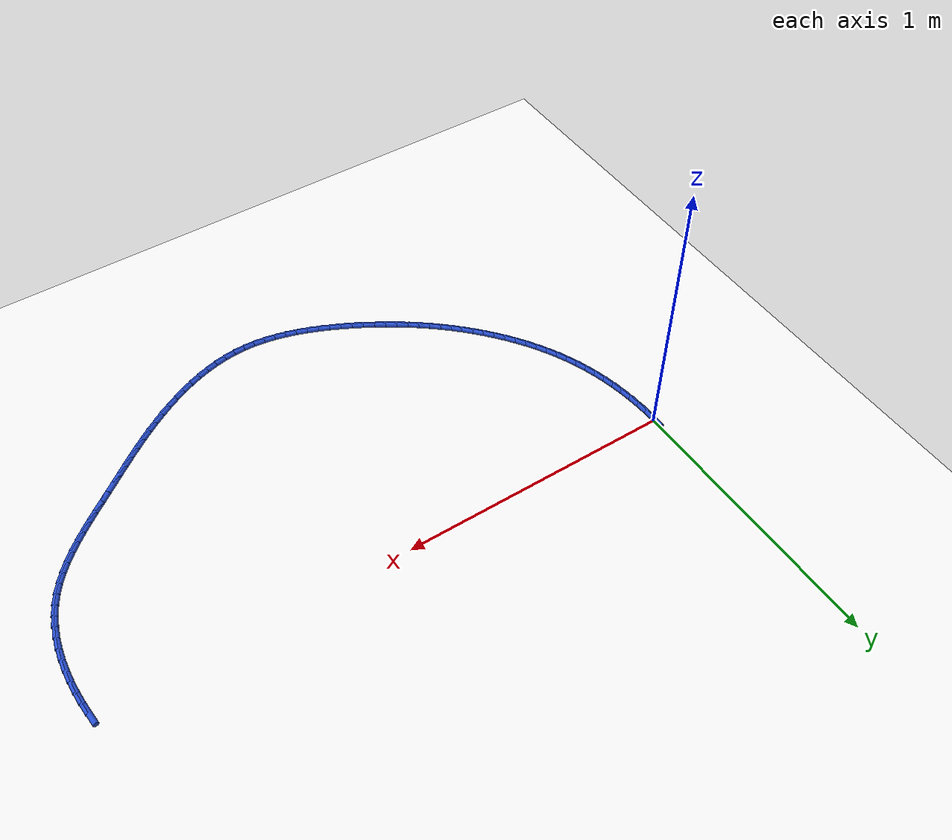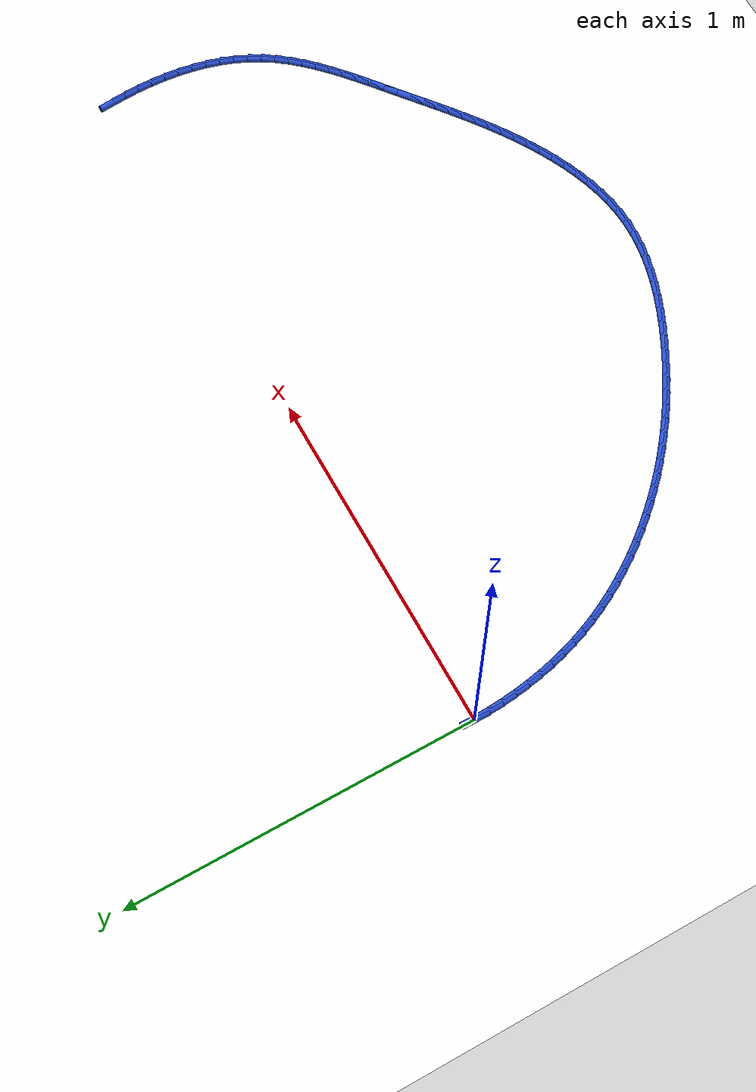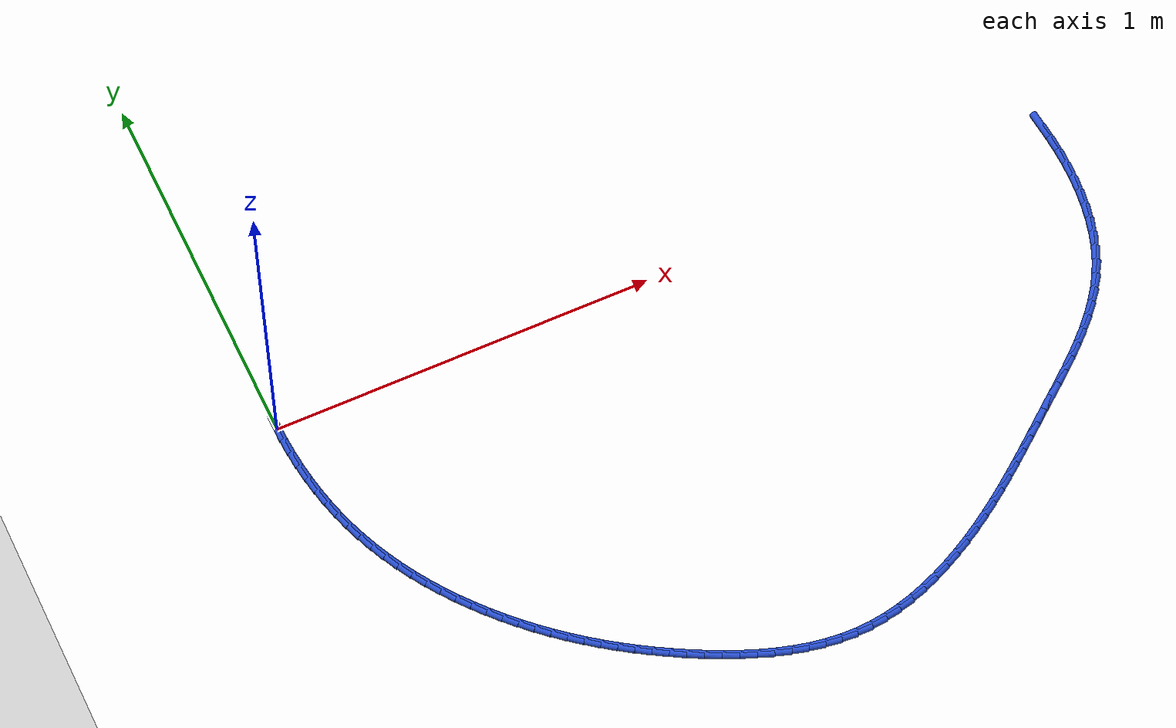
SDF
<sdf version="1.6">
 <world name="default">
  <model name="ground_plane">
   <static>1</static>
   <link name="link">
    <collision name="collision">
     <geometry><plane><normal>0 0 1</normal><size>100 100</size></plane></geometry>
     <surface><friction><ode><mu>100</mu><mu2>50</mu2></ode></friction></surface>
    </collision>
    <visual name="visual">
     <cast_shadows>0</cast_shadows>
     <geometry><plane><normal>0 0 1</normal><size>100 100</size></plane></geometry>
     <material>
      <script><uri>file://media/materials/scripts/gazebo.material</uri><name>Gazebo/WhiteGlow</name></script>
     </material>
    </visual>
   </link>
  </model>
  <model name="line">
   <link name="link_0">
    <pose>5.204170427930421e-18 1.3877787807814457e-17 0.01 0 1.57 1.5624504358657028</pose>
    <collision name="collision">
     <geometry><cylinder><radius>0.01</radius><length>0.08</length></cylinder></geometry>
    </collision>
    <visual name="visual">
     <material>
      <script><name>Gazebo/Blue</name><uri>file://media/materials/scripts/gazebo.material</uri></script>
     </material>
     <geometry><cylinder><radius>0.01</radius><length>0.08</length></cylinder></geometry>
    </visual>
   </link>
   <link name="link_80">
    <pose>2.093784218397002 -0.013308781651336853 0.01 0 1.57 -1.4902204336934235</pose>
    <collision name="collision">
     <geometry><cylinder><radius>0.01</radius><length>0.08</length></cylinder></geometry>
    </collision>
    <visual name="visual">
     <material>
      <script><name>Gazebo/Blue</name><uri>file://media/materials/scripts/gazebo.material</uri></script>
     </material>
     <geometry><cylinder><radius>0.01</radius><length>0.08</length></cylinder></geometry>
    </visual>
   </link>
   <link name="link_81">
    <pose>2.0971899885968877 -0.055485123127867124 0.01 0 1.57 -1.5299615712983357</pose>
    <collision name="collision">
     <geometry><cylinder><radius>0.01</radius><length>0.08</length></cylinder></geometry>
    </collision>
    <visual name="visual">
     <material>
      <script><name>Gazebo/Blue</name><uri>file://media/materials/scripts/gazebo.material</uri></script>
     </material>
     <geometry><cylinder><radius>0.01</radius><length>0.08</length></cylinder></geometry>
    </visual>
   </link>
   <link name="link_82">
    <pose>2.0989229456311054 -0.09789981825498363 0.01 0 1.57 1.569244556326786</pose>
    <collision name="collision">
     <geometry><cylinder><radius>0.01</radius><length>0.08</length></cylinder></geometry>
    </collision>
    <visual name="visual">
     <material>
      <script><name>Gazebo/Blue</name><uri>file://media/materials/scripts/gazebo.material</uri></script>
     </material>
     <geometry><cylinder><radius>0.01</radius><length>0.08</length></cylinder></geometry>
    </visual>
   </link>
   <link name="link_83">
    <pose>2.098857074156613 -0.14034902254991538 0.01 0 1.57 1.5237468387316762</pose>
    <collision name="collision">
     <geometry><cylinder><radius>0.01</radius><length>0.08</length></cylinder></geometry>
    </collision>
    <visual name="visual">
     <material>
      <script><name>Gazebo/Blue</name><uri>file://media/materials/scripts/gazebo.material</uri></script>
     </material>
     <geometry><cylinder><radius>0.01</radius><length>0.08</length></cylinder></geometry>
    </visual>
   </link>
   <link name="link_84">
    <pose>2.096866358830369 -0.1826288915298936 0.01 0 1.57 1.4746514463845992</pose>
    <collision name="collision">
     <geometry><cylinder><radius>0.01</radius><length>0.08</length></cylinder></geometry>
    </collision>
    <visual name="visual">
     <material>
      <script><name>Gazebo/Blue</name><uri>file://media/materials/scripts/gazebo.material</uri></script>
     </material>
     <geometry><cylinder><radius>0.01</radius><length>0.08</length></cylinder></geometry>
    </visual>
   </link>
   <link name="link_85">
    <pose>2.092824784309332 -0.22453558071214902 0.01 0 1.57 1.4214568233668377</pose>
    <collision name="collision">
     <geometry><cylinder><radius>0.01</radius><length>0.08</length></cylinder></geometry>
    </collision>
    <visual name="visual">
     <material>
      <script><name>Gazebo/Blue</name><uri>file://media/materials/scripts/gazebo.material</uri></script>
     </material>
     <geometry><cylinder><radius>0.01</radius><length>0.08</length></cylinder></geometry>
    </visual>
   </link>
   <link name="link_86">
    <pose>2.0866063352504582 -0.26586524561391206 0.01 0 1.57 1.3636602497576782</pose>
    <collision name="collision">
     <geometry><cylinder><radius>0.01</radius><length>0.08</length></cylinder></geometry>
    </collision>
    <visual name="visual">
     <material>
      <script><name>Gazebo/Blue</name><uri>file://media/materials/scripts/gazebo.material</uri></script>
     </material>
     <geometry><cylinder><radius>0.01</radius><length>0.08</length></cylinder></geometry>
    </visual>
   </link>
   <link name="link_87">
    <pose>2.078084996310707 -0.3064140417524139 0.01 0 1.57 1.3007831247913817</pose>
    <collision name="collision">
     <geometry><cylinder><radius>0.01</radius><length>0.08</length></cylinder></geometry>
    </collision>
    <visual name="visual">
     <material>
      <script><name>Gazebo/Blue</name><uri>file://media/materials/scripts/gazebo.material</uri></script>
     </material>
     <geometry><cylinder><radius>0.01</radius><length>0.08</length></cylinder></geometry>
    </visual>
   </link>
   <link name="link_88">
    <pose>2.0671347521470356 -0.34597812464488364 0.01 0 1.57 1.2324109073869995</pose>
    <collision name="collision">
     <geometry><cylinder><radius>0.01</radius><length>0.08</length></cylinder></geometry>
    </collision>
    <visual name="visual">
     <material>
      <script><name>Gazebo/Blue</name><uri>file://media/materials/scripts/gazebo.material</uri></script>
     </material>
     <geometry><cylinder><radius>0.01</radius><length>0.08</length></cylinder></geometry>
    </visual>
   </link>
   <link name="link_89">
    <pose>2.053629587416402 -0.38435364980855263 0.01 0 1.57 1.1582500764771952</pose>
    <collision name="collision">
     <geometry><cylinder><radius>0.01</radius><length>0.08</length></cylinder></geometry>
    </collision>
    <visual name="visual">
     <material>
      <script><name>Gazebo/Blue</name><uri>file://media/materials/scripts/gazebo.material</uri></script>
     </material>
     <geometry><cylinder><radius>0.01</radius><length>0.08</length></cylinder></geometry>
    </visual>
   </link>
   <link name="link_90">
    <pose>2.0374434867757643 -0.4213367727606514 0.01 0 1.57 1.0782090351144642</pose>
    <collision name="collision">
     <geometry><cylinder><radius>0.01</radius><length>0.08</length></cylinder></geometry>
    </collision>
    <visual name="visual">
     <material>
      <script><name>Gazebo/Blue</name><uri>file://media/materials/scripts/gazebo.material</uri></script>
     </material>
     <geometry><cylinder><radius>0.01</radius><length>0.08</length></cylinder></geometry>
    </visual>
   </link>
   <link name="link_91">
    <pose>2.0184506739896557 -0.4567238455673195 0.01 0 1.57 0.9961169589376873</pose>
    <collision name="collision">
     <geometry><cylinder><radius>0.01</radius><length>0.08</length></cylinder></geometry>
    </collision>
    <visual name="visual">
     <material>
      <script><name>Gazebo/Blue</name><uri>file://media/materials/scripts/gazebo.material</uri></script>
     </material>
     <geometry><cylinder><radius>0.01</radius><length>0.08</length></cylinder></geometry>
    </visual>
   </link>
   <link name="link_92">
    <pose>1.99663921477434 -0.4904047995608812 0.01 0 1.57 0.9220245588589051</pose>
    <collision name="collision">
     <geometry><cylinder><radius>0.01</radius><length>0.08</length></cylinder></geometry>
    </collision>
    <visual name="visual">
     <material>
      <script><name>Gazebo/Blue</name><uri>file://media/materials/scripts/gazebo.material</uri></script>
     </material>
     <geometry><cylinder><radius>0.01</radius><length>0.08</length></cylinder></geometry>
    </visual>
   </link>
   <link name="link_93">
    <pose>1.9722928691775803 -0.5225126298839304 0.01 0 1.57 0.8578663828963204</pose>
    <collision name="collision">
     <geometry><cylinder><radius>0.01</radius><length>0.08</length></cylinder></geometry>
    </collision>
    <visual name="visual">
     <material>
      <script><name>Gazebo/Blue</name><uri>file://media/materials/scripts/gazebo.material</uri></script>
     </material>
     <geometry><cylinder><radius>0.01</radius><length>0.08</length></cylinder></geometry>
    </visual>
   </link>
   <link name="link_94">
    <pose>1.9457427860512124 -0.5532192857679811 0.01 0 1.57 0.8036130226976927</pose>
    <collision name="collision">
     <geometry><cylinder><radius>0.01</radius><length>0.08</length></cylinder></geometry>
    </collision>
    <visual name="visual">
     <material>
      <script><name>Gazebo/Blue</name><uri>file://media/materials/scripts/gazebo.material</uri></script>
     </material>
     <geometry><cylinder><radius>0.01</radius><length>0.08</length></cylinder></geometry>
    </visual>
   </link>
   <link name="link_95">
    <pose>1.9173201142470697 -0.5826967164445459 0.01 0 1.57 0.7589595821065728</pose>
    <collision name="collision">
     <geometry><cylinder><radius>0.01</radius><length>0.08</length></cylinder></geometry>
    </collision>
    <visual name="visual">
     <material>
      <script><name>Gazebo/Blue</name><uri>file://media/materials/scripts/gazebo.material</uri></script>
     </material>
     <geometry><cylinder><radius>0.01</radius><length>0.08</length></cylinder></geometry>
    </visual>
   </link>
   <link name="link_96">
    <pose>1.8873560026169864 -0.6111168711451384 0.01 0 1.57 0.7234841705600613</pose>
    <collision name="collision">
     <geometry><cylinder><radius>0.01</radius><length>0.08</length></cylinder></geometry>
    </collision>
    <visual name="visual">
     <material>
      <script><name>Gazebo/Blue</name><uri>file://media/materials/scripts/gazebo.material</uri></script>
     </material>
     <geometry><cylinder><radius>0.01</radius><length>0.08</length></cylinder></geometry>
    </visual>
   </link>
   <link name="link_97">
    <pose>1.8561816000127982 -0.6386516991012705 0.01 0 1.57 0.6967631547896549</pose>
    <collision name="collision">
     <geometry><cylinder><radius>0.01</radius><length>0.08</length></cylinder></geometry>
    </collision>
    <visual name="visual">
     <material>
      <script><name>Gazebo/Blue</name><uri>file://media/materials/scripts/gazebo.material</uri></script>
     </material>
     <geometry><cylinder><radius>0.01</radius><length>0.08</length></cylinder></geometry>
    </visual>
   </link>
   <link name="link_98">
    <pose>1.8241280552863381 -0.6654731495444552 0.01 0 1.57 0.6784479593526502</pose>
    <collision name="collision">
     <geometry><cylinder><radius>0.01</radius><length>0.08</length></cylinder></geometry>
    </collision>
    <visual name="visual">
     <material>
      <script><name>Gazebo/Blue</name><uri>file://media/materials/scripts/gazebo.material</uri></script>
     </material>
     <geometry><cylinder><radius>0.01</radius><length>0.08</length></cylinder></geometry>
    </visual>
   </link>
   <link name="link_99">
    <pose>1.791526517289441 -0.6917531717062058 0.01 0 1.57 0.6683137052485225</pose>
    <collision name="collision">
     <geometry><cylinder><radius>0.01</radius><length>0.08</length></cylinder></geometry>
    </collision>
    <visual name="visual">
     <material>
      <script><name>Gazebo/Blue</name><uri>file://media/materials/scripts/gazebo.material</uri></script>
     </material>
     <geometry><cylinder><radius>0.01</radius><length>0.08</length></cylinder></geometry>
    </visual>
   </link>
   <link name="link_100">
    <pose>1.7587081348739417 -0.717663714818035 0.01 0 1.57 0.666287559756566</pose>
    <collision name="collision">
     <geometry><cylinder><radius>0.01</radius><length>0.08</length></cylinder></geometry>
    </collision>
    <visual name="visual">
     <material>
      <script><name>Gazebo/Blue</name><uri>file://media/materials/scripts/gazebo.material</uri></script>
     </material>
     <geometry><cylinder><radius>0.01</radius><length>0.08</length></cylinder></geometry>
    </visual>
   </link>
   <link name="link_101">
    <pose>1.726003972228084 -0.7433766841606453 0.01 0 1.57 0.6697487113102368</pose>
    <collision name="collision">
     <geometry><cylinder><radius>0.01</radius><length>0.08</length></cylinder></geometry>
    </collision>
    <visual name="visual">
     <material>
      <script><name>Gazebo/Blue</name><uri>file://media/materials/scripts/gazebo.material</uri></script>
     </material>
     <geometry><cylinder><radius>0.01</radius><length>0.08</length></cylinder></geometry>
    </visual>
   </link>
   <link name="link_102">
    <pose>1.693635814567277 -0.7690072557935899 0.01 0 1.57 0.6707052212868624</pose>
    <collision name="collision">
     <geometry><cylinder><radius>0.01</radius><length>0.08</length></cylinder></geometry>
    </collision>
    <visual name="visual">
     <material>
      <script><name>Gazebo/Blue</name><uri>file://media/materials/scripts/gazebo.material</uri></script>
     </material>
     <geometry><cylinder><radius>0.01</radius><length>0.08</length></cylinder></geometry>
    </visual>
   </link>
   <link name="link_103">
    <pose>1.6615017055163877 -0.794502544091659 0.01 0 1.57 0.667602838296342</pose>
    <collision name="collision">
     <geometry><cylinder><radius>0.01</radius><length>0.08</length></cylinder></geometry>
    </collision>
    <visual name="visual">
     <material>
      <script><name>Gazebo/Blue</name><uri>file://media/materials/scripts/gazebo.material</uri></script>
     </material>
     <geometry><cylinder><radius>0.01</radius><length>0.08</length></cylinder></geometry>
    </visual>
   </link>
   <link name="link_104">
    <pose>1.6294400196122798 -0.8197786878375299 0.01 0 1.57 0.6604012149525101</pose>
    <collision name="collision">
     <geometry><cylinder><radius>0.01</radius><length>0.08</length></cylinder></geometry>
    </collision>
    <visual name="visual">
     <material>
      <script><name>Gazebo/Blue</name><uri>file://media/materials/scripts/gazebo.material</uri></script>
     </material>
     <geometry><cylinder><radius>0.01</radius><length>0.08</length></cylinder></geometry>
    </visual>
   </link>
   <link name="link_105">
    <pose>1.5972891313918198 -0.8447518258138816 0.01 0 1.57 0.6491064008784774</pose>
    <collision name="collision">
     <geometry><cylinder><radius>0.01</radius><length>0.08</length></cylinder></geometry>
    </collision>
    <visual name="visual">
     <material>
      <script><name>Gazebo/Blue</name><uri>file://media/materials/scripts/gazebo.material</uri></script>
     </material>
     <geometry><cylinder><radius>0.01</radius><length>0.08</length></cylinder></geometry>
    </visual>
   </link>
   <link name="link_106">
    <pose>1.5648874153918717 -0.8693380968033924 0.01 0 1.57 0.6337749693399272</pose>
    <collision name="collision">
     <geometry><cylinder><radius>0.01</radius><length>0.08</length></cylinder></geometry>
    </collision>
    <visual name="visual">
     <material>
      <script><name>Gazebo/Blue</name><uri>file://media/materials/scripts/gazebo.material</uri></script>
     </material>
     <geometry><cylinder><radius>0.01</radius><length>0.08</length></cylinder></geometry>
    </visual>
   </link>
   <link name="link_107">
    <pose>1.532073246149303 -0.8934536395887399 0.01 0 1.57 0.6145185750868507</pose>
    <collision name="collision">
     <geometry><cylinder><radius>0.01</radius><length>0.08</length></cylinder></geometry>
    </collision>
    <visual name="visual">
     <material>
      <script><name>Gazebo/Blue</name><uri>file://media/materials/scripts/gazebo.material</uri></script>
     </material>
     <geometry><cylinder><radius>0.01</radius><length>0.08</length></cylinder></geometry>
    </visual>
   </link>
   <link name="link_108">
    <pose>1.4986849982009773 -0.9170145929526027 0.01 0 1.57 0.5915082897819273</pose>
    <collision name="collision">
     <geometry><cylinder><radius>0.01</radius><length>0.08</length></cylinder></geometry>
    </collision>
    <visual name="visual">
     <material>
      <script><name>Gazebo/Blue</name><uri>file://media/materials/scripts/gazebo.material</uri></script>
     </material>
     <geometry><cylinder><radius>0.01</radius><length>0.08</length></cylinder></geometry>
    </visual>
   </link>
   <link name="link_109">
    <pose>1.4645610460837606 -0.9399370956776592 0.01 0 1.57 0.5649747236117941</pose>
    <collision name="collision">
     <geometry><cylinder><radius>0.01</radius><length>0.08</length></cylinder></geometry>
    </collision>
    <visual name="visual">
     <material>
      <script><name>Gazebo/Blue</name><uri>file://media/materials/scripts/gazebo.material</uri></script>
     </material>
     <geometry><cylinder><radius>0.01</radius><length>0.08</length></cylinder></geometry>
    </visual>
   </link>
   <link name="link_110">
    <pose>1.429544478812985 -0.9621341463953811 0.01 0 1.57 0.535025665583429</pose>
    <collision name="collision">
     <geometry><cylinder><radius>0.01</radius><length>0.08</length></cylinder></geometry>
    </collision>
    <visual name="visual">
     <material>
      <script><name>Gazebo/Blue</name><uri>file://media/materials/scripts/gazebo.material</uri></script>
     </material>
     <geometry><cylinder><radius>0.01</radius><length>0.08</length></cylinder></geometry>
    </visual>
   </link>
   <link name="link_111">
    <pose>1.393596369461173 -0.9834401586334869 0.01 0 1.57 0.5013778766968792</pose>
    <collision name="collision">
     <geometry><cylinder><radius>0.01</radius><length>0.08</length></cylinder></geometry>
    </collision>
    <visual name="visual">
     <material>
      <script><name>Gazebo/Blue</name><uri>file://media/materials/scripts/gazebo.material</uri></script>
     </material>
     <geometry><cylinder><radius>0.01</radius><length>0.08</length></cylinder></geometry>
    </visual>
   </link>
   <link name="link_112">
    <pose>1.356801338652014 -1.0036072551648385 0.01 0 1.57 0.46366188178187023</pose>
    <collision name="collision">
     <geometry><cylinder><radius>0.01</radius><length>0.08</length></cylinder></geometry>
    </collision>
    <visual name="visual">
     <material>
      <script><name>Gazebo/Blue</name><uri>file://media/materials/scripts/gazebo.material</uri></script>
     </material>
     <geometry><cylinder><radius>0.01</radius><length>0.08</length></cylinder></geometry>
    </visual>
   </link>
   <link name="link_113">
    <pose>1.3192498349270523 -1.0223836769875896 0.01 0 1.57 0.4214626237090496</pose>
    <collision name="collision">
     <geometry><cylinder><radius>0.01</radius><length>0.08</length></cylinder></geometry>
    </collision>
    <visual name="visual">
     <material>
      <script><name>Gazebo/Blue</name><uri>file://media/materials/scripts/gazebo.material</uri></script>
     </material>
     <geometry><cylinder><radius>0.01</radius><length>0.08</length></cylinder></geometry>
    </visual>
   </link>
   <link name="link_114">
    <pose>1.281032306827833 -1.0395176650998919 0.01 0 1.57 0.37432574258325363</pose>
    <collision name="collision">
     <geometry><cylinder><radius>0.01</radius><length>0.08</length></cylinder></geometry>
    </collision>
    <visual name="visual">
     <material>
      <script><name>Gazebo/Blue</name><uri>file://media/materials/scripts/gazebo.material</uri></script>
     </material>
     <geometry><cylinder><radius>0.01</radius><length>0.08</length></cylinder></geometry>
    </visual>
   </link>
   <link name="link_115">
    <pose>1.2422392028959024 -1.0547574604998986 0.01 0 1.57 0.3217757577217389</pose>
    <collision name="collision">
     <geometry><cylinder><radius>0.01</radius><length>0.08</length></cylinder></geometry>
    </collision>
    <visual name="visual">
     <material>
      <script><name>Gazebo/Blue</name><uri>file://media/materials/scripts/gazebo.material</uri></script>
     </material>
     <geometry><cylinder><radius>0.01</radius><length>0.08</length></cylinder></geometry>
    </visual>
   </link>
   <link name="link_116">
    <pose>1.202960971672803 -1.0678513041857625 0.01 0 1.57 0.2633464113969835</pose>
    <collision name="collision">
     <geometry><cylinder><radius>0.01</radius><length>0.08</length></cylinder></geometry>
    </collision>
    <visual name="visual">
     <material>
      <script><name>Gazebo/Blue</name><uri>file://media/materials/scripts/gazebo.material</uri></script>
     </material>
     <geometry><cylinder><radius>0.01</radius><length>0.08</length></cylinder></geometry>
    </visual>
   </link>
   <link name="link_117">
    <pose>1.163288061700083 -1.0785474371556356 0.01 0 1.57 0.1986275756104071</pose>
    <collision name="collision">
     <geometry><cylinder><radius>0.01</radius><length>0.08</length></cylinder></geometry>
    </collision>
    <visual name="visual">
     <material>
      <script><name>Gazebo/Blue</name><uri>file://media/materials/scripts/gazebo.material</uri></script>
     </material>
     <geometry><cylinder><radius>0.01</radius><length>0.08</length></cylinder></geometry>
    </visual>
   </link>
   <link name="link_118">
    <pose>1.1233109215192858 -1.0865941004076705 0.01 0 1.57 0.12733213715052807</pose>
    <collision name="collision">
     <geometry><cylinder><radius>0.01</radius><length>0.08</length></cylinder></geometry>
    </collision>
    <visual name="visual">
     <material>
      <script><name>Gazebo/Blue</name><uri>file://media/materials/scripts/gazebo.material</uri></script>
     </material>
     <geometry><cylinder><radius>0.01</radius><length>0.08</length></cylinder></geometry>
    </visual>
   </link>
   <link name="link_119">
    <pose>1.0831199996719567 -1.0917395349400199 0.01 0 1.57 0.0494462967412755</pose>
    <collision name="collision">
     <geometry><cylinder><radius>0.01</radius><length>0.08</length></cylinder></geometry>
    </collision>
    <visual name="visual">
     <material>
      <script><name>Gazebo/Blue</name><uri>file://media/materials/scripts/gazebo.material</uri></script>
     </material>
     <geometry><cylinder><radius>0.01</radius><length>0.08</length></cylinder></geometry>
    </visual>
   </link>
   <link name="link_120">
    <pose>1.0428056713609228 -1.0937345553449322 0.01 0 1.57 -0.03038818592249609</pose>
    <collision name="collision">
     <geometry><cylinder><radius>0.01</radius><length>0.08</length></cylinder></geometry>
    </collision>
    <visual name="visual">
     <material>
      <script><name>Gazebo/Blue</name><uri>file://media/materials/scripts/gazebo.material</uri></script>
     </material>
     <geometry><cylinder><radius>0.01</radius><length>0.08</length></cylinder></geometry>
    </visual>
   </link>
   <link name="link_121">
    <pose>1.0024532404071733 -1.092507940578305 0.01 0 1.57 -0.10452444519552655</pose>
    <collision name="collision">
     <geometry><cylinder><radius>0.01</radius><length>0.08</length></cylinder></geometry>
    </collision>
    <visual name="visual">
     <material>
      <script><name>Gazebo/Blue</name><uri>file://media/materials/scripts/gazebo.material</uri></script>
     </material>
     <geometry><cylinder><radius>0.01</radius><length>0.08</length></cylinder></geometry>
    </visual>
   </link>
   <link name="link_122">
    <pose>0.9621397377352483 -1.0882787811521037 0.01 0 1.57 -0.17206669935898672</pose>
    <collision name="collision">
     <geometry><cylinder><radius>0.01</radius><length>0.08</length></cylinder></geometry>
    </collision>
    <visual name="visual">
     <material>
      <script><name>Gazebo/Blue</name><uri>file://media/materials/scripts/gazebo.material</uri></script>
     </material>
     <geometry><cylinder><radius>0.01</radius><length>0.08</length></cylinder></geometry>
    </visual>
   </link>
   <link name="link_123">
    <pose>0.9219414321585313 -1.0812929114976157 0.01 0 1.57 -0.2330643557292675</pose>
    <collision name="collision">
     <geometry><cylinder><radius>0.01</radius><length>0.08</length></cylinder></geometry>
    </collision>
    <visual name="visual">
     <material>
      <script><name>Gazebo/Blue</name><uri>file://media/materials/scripts/gazebo.material</uri></script>
     </material>
     <geometry><cylinder><radius>0.01</radius><length>0.08</length></cylinder></geometry>
    </visual>
   </link>
   <link name="link_124">
    <pose>0.8819345924904066 -1.0717961660461262 0.01 0 1.57 -0.28776017653366154</pose>
    <collision name="collision">
     <geometry><cylinder><radius>0.01</radius><length>0.08</length></cylinder></geometry>
    </collision>
    <visual name="visual">
     <material>
      <script><name>Gazebo/Blue</name><uri>file://media/materials/scripts/gazebo.material</uri></script>
     </material>
     <geometry><cylinder><radius>0.01</radius><length>0.08</length></cylinder></geometry>
    </visual>
   </link>
   <link name="link_125">
    <pose>0.8421954875442581 -1.0600343792289213 0.01 0 1.57 -0.3365099166774755</pose>
    <collision name="collision">
     <geometry><cylinder><radius>0.01</radius><length>0.08</length></cylinder></geometry>
    </collision>
    <visual name="visual">
     <material>
      <script><name>Gazebo/Blue</name><uri>file://media/materials/scripts/gazebo.material</uri></script>
     </material>
     <geometry><cylinder><radius>0.01</radius><length>0.08</length></cylinder></geometry>
    </visual>
   </link>
   <link name="link_126">
    <pose>0.8028003861334695 -1.0462533854772873 0.01 0 1.57 -0.37971947318754856</pose>
    <collision name="collision">
     <geometry><cylinder><radius>0.01</radius><length>0.08</length></cylinder></geometry>
    </collision>
    <visual name="visual">
     <material>
      <script><name>Gazebo/Blue</name><uri>file://media/materials/scripts/gazebo.material</uri></script>
     </material>
     <geometry><cylinder><radius>0.01</radius><length>0.08</length></cylinder></geometry>
    </visual>
   </link>
   <link name="link_127">
    <pose>0.7638255570714264 -1.0306990192225105 0.01 0 1.57 -0.4177998264996015</pose>
    <collision name="collision">
     <geometry><cylinder><radius>0.01</radius><length>0.08</length></cylinder></geometry>
    </collision>
    <visual name="visual">
     <material>
      <script><name>Gazebo/Blue</name><uri>file://media/materials/scripts/gazebo.material</uri></script>
     </material>
     <geometry><cylinder><radius>0.01</radius><length>0.08</length></cylinder></geometry>
    </visual>
   </link>
   <link name="link_128">
    <pose>0.7253472691715122 -1.0136171148958768 0.01 0 1.57 -0.45113679432257175</pose>
    <collision name="collision">
     <geometry><cylinder><radius>0.01</radius><length>0.08</length></cylinder></geometry>
    </collision>
    <visual name="visual">
     <material>
      <script><name>Gazebo/Blue</name><uri>file://media/materials/scripts/gazebo.material</uri></script>
     </material>
     <geometry><cylinder><radius>0.01</radius><length>0.08</length></cylinder></geometry>
    </visual>
   </link>
   <link name="link_129">
    <pose>0.6874417912471107 -0.9952535069286724 0.01 0 1.57 -0.4800716833377559</pose>
    <collision name="collision">
     <geometry><cylinder><radius>0.01</radius><length>0.08</length></cylinder></geometry>
    </collision>
    <visual name="visual">
     <material>
      <script><name>Gazebo/Blue</name><uri>file://media/materials/scripts/gazebo.material</uri></script>
     </material>
     <geometry><cylinder><radius>0.01</radius><length>0.08</length></cylinder></geometry>
    </visual>
   </link>
   <link name="link_130">
    <pose>0.650185391332504 -0.9758540264829009 0.01 0 1.57 -0.505797439836905</pose>
    <collision name="collision">
     <geometry><cylinder><radius>0.01</radius><length>0.08</length></cylinder></geometry>
    </collision>
    <visual name="visual">
     <material>
      <script><name>Gazebo/Blue</name><uri>file://media/materials/scripts/gazebo.material</uri></script>
     </material>
     <geometry><cylinder><radius>0.01</radius><length>0.08</length></cylinder></geometry>
    </visual>
   </link>
   <link name="link_131">
    <pose>0.6136424346684133 -0.955614558036386 0.01 0 1.57 -0.5316563200795448</pose>
    <collision name="collision">
     <geometry><cylinder><radius>0.01</radius><length>0.08</length></cylinder></geometry>
    </collision>
    <visual name="visual">
     <material>
      <script><name>Gazebo/Blue</name><uri>file://media/materials/scripts/gazebo.material</uri></script>
     </material>
     <geometry><cylinder><radius>0.01</radius><length>0.08</length></cylinder></geometry>
    </visual>
   </link>
   <link name="link_132">
    <pose>0.5778353002885179 -0.9345548029035137 0.01 0 1.57 -0.5583490722289779</pose>
    <collision name="collision">
     <geometry><cylinder><radius>0.01</radius><length>0.08</length></cylinder></geometry>
    </collision>
    <visual name="visual">
     <material>
      <script><name>Gazebo/Blue</name><uri>file://media/materials/scripts/gazebo.material</uri></script>
     </material>
     <geometry><cylinder><radius>0.01</radius><length>0.08</length></cylinder></geometry>
    </visual>
   </link>
   <link name="link_133">
    <pose>0.5427771142092762 -0.9126556347464474 0.01 0 1.57 -0.5858523851434382</pose>
    <collision name="collision">
     <geometry><cylinder><radius>0.01</radius><length>0.08</length></cylinder></geometry>
    </collision>
    <visual name="visual">
     <material>
      <script><name>Gazebo/Blue</name><uri>file://media/materials/scripts/gazebo.material</uri></script>
     </material>
     <geometry><cylinder><radius>0.01</radius><length>0.08</length></cylinder></geometry>
    </visual>
   </link>
   <link name="link_134">
    <pose>0.5084810024471464 -0.8898979272273513 0.01 0 1.57 -0.6141361763761328</pose>
    <collision name="collision">
     <geometry><cylinder><radius>0.01</radius><length>0.08</length></cylinder></geometry>
    </collision>
    <visual name="visual">
     <material>
      <script><name>Gazebo/Blue</name><uri>file://media/materials/scripts/gazebo.material</uri></script>
     </material>
     <geometry><cylinder><radius>0.01</radius><length>0.08</length></cylinder></geometry>
    </visual>
   </link>
   <link name="link_135">
    <pose>0.4749600910185875 -0.8662625540083888 0.01 0 1.57 -0.6431632841457907</pose>
    <collision name="collision">
     <geometry><cylinder><radius>0.01</radius><length>0.08</length></cylinder></geometry>
    </collision>
    <visual name="visual">
     <material>
      <script><name>Gazebo/Blue</name><uri>file://media/materials/scripts/gazebo.material</uri></script>
     </material>
     <geometry><cylinder><radius>0.01</radius><length>0.08</length></cylinder></geometry>
    </visual>
   </link>
   <link name="link_136">
    <pose>0.44222750594005694 -0.8417303887517238 0.01 0 1.57 -0.6728892847719283</pose>
    <collision name="collision">
     <geometry><cylinder><radius>0.01</radius><length>0.08</length></cylinder></geometry>
    </collision>
    <visual name="visual">
     <material>
      <script><name>Gazebo/Blue</name><uri>file://media/materials/scripts/gazebo.material</uri></script>
     </material>
     <geometry><cylinder><radius>0.01</radius><length>0.08</length></cylinder></geometry>
    </visual>
   </link>
   <link name="link_137">
    <pose>0.4102963732280148 -0.8162823051195213 0.01 0 1.57 -0.7032624603058601</pose>
    <collision name="collision">
     <geometry><cylinder><radius>0.01</radius><length>0.08</length></cylinder></geometry>
    </collision>
    <visual name="visual">
     <material>
      <script><name>Gazebo/Blue</name><uri>file://media/materials/scripts/gazebo.material</uri></script>
     </material>
     <geometry><cylinder><radius>0.01</radius><length>0.08</length></cylinder></geometry>
    </visual>
   </link>
   <link name="link_138">
    <pose>0.37917981889891894 -0.7898991767739444 0.01 0 1.57 -0.7342239376469765</pose>
    <collision name="collision">
     <geometry><cylinder><radius>0.01</radius><length>0.08</length></cylinder></geometry>
    </collision>
    <visual name="visual">
     <material>
      <script><name>Gazebo/Blue</name><uri>file://media/materials/scripts/gazebo.material</uri></script>
     </material>
     <geometry><cylinder><radius>0.01</radius><length>0.08</length></cylinder></geometry>
    </visual>
   </link>
   <link name="link_139">
    <pose>0.3488909689692278 -0.7625618773771573 0.01 0 1.57 -0.7657080149246102</pose>
    <collision name="collision">
     <geometry><cylinder><radius>0.01</radius><length>0.08</length></cylinder></geometry>
    </collision>
    <visual name="visual">
     <material>
      <script><name>Gazebo/Blue</name><uri>file://media/materials/scripts/gazebo.material</uri></script>
     </material>
     <geometry><cylinder><radius>0.01</radius><length>0.08</length></cylinder></geometry>
    </visual>
   </link>
   <link name="link_140">
    <pose>0.31944294945540014 -0.7342512805913238 0.01 0 1.57 -0.7976427102775542</pose>
    <collision name="collision">
     <geometry><cylinder><radius>0.01</radius><length>0.08</length></cylinder></geometry>
    </collision>
    <visual name="visual">
     <material>
      <script><name>Gazebo/Blue</name><uri>file://media/materials/scripts/gazebo.material</uri></script>
     </material>
     <geometry><cylinder><radius>0.01</radius><length>0.08</length></cylinder></geometry>
    </visual>
   </link>
   <link name="link_141">
    <pose>0.2908488912590268 -0.7049482635110013 0.01 0 1.57 -0.8300518301819167</pose>
    <collision name="collision">
     <geometry><cylinder><radius>0.01</radius><length>0.08</length></cylinder></geometry>
    </collision>
    <visual name="visual">
     <material>
      <script><name>Gazebo/Blue</name><uri>file://media/materials/scripts/gazebo.material</uri></script>
     </material>
     <geometry><cylinder><radius>0.01</radius><length>0.08</length></cylinder></geometry>
    </visual>
   </link>
   <link name="link_142">
    <pose>0.2631377146214497 -0.6746447971415581 0.01 0 1.57 -0.8632708654517377</pose>
    <collision name="collision">
     <geometry><cylinder><radius>0.01</radius><length>0.08</length></cylinder></geometry>
    </collision>
    <visual name="visual">
     <material>
      <script><name>Gazebo/Blue</name><uri>file://media/materials/scripts/gazebo.material</uri></script>
     </material>
     <geometry><cylinder><radius>0.01</radius><length>0.08</length></cylinder></geometry>
    </visual>
   </link>
   <link name="link_143">
    <pose>0.23638920778299963 -0.6433685933776484 0.01 0 1.57 -0.8974844303238496</pose>
    <collision name="collision">
     <geometry><cylinder><radius>0.01</radius><length>0.08</length></cylinder></geometry>
    </collision>
    <visual name="visual">
     <material>
      <script><name>Gazebo/Blue</name><uri>file://media/materials/scripts/gazebo.material</uri></script>
     </material>
     <geometry><cylinder><radius>0.01</radius><length>0.08</length></cylinder></geometry>
    </visual>
   </link>
   <link name="link_144">
    <pose>0.21069338312937547 -0.6111545478061278 0.01 0 1.57 -0.9328182280619538</pose>
    <collision name="collision">
     <geometry><cylinder><radius>0.01</radius><length>0.08</length></cylinder></geometry>
    </collision>
    <visual name="visual">
     <material>
      <script><name>Gazebo/Blue</name><uri>file://media/materials/scripts/gazebo.material</uri></script>
     </material>
     <geometry><cylinder><radius>0.01</radius><length>0.08</length></cylinder></geometry>
    </visual>
   </link>
   <link name="link_145">
    <pose>0.18614025304627613 -0.5780375560138515 0.01 0 1.57 -0.9693945354030461</pose>
    <collision name="collision">
     <geometry><cylinder><radius>0.01</radius><length>0.08</length></cylinder></geometry>
    </collision>
    <visual name="visual">
     <material>
      <script><name>Gazebo/Blue</name><uri>file://media/materials/scripts/gazebo.material</uri></script>
     </material>
     <geometry><cylinder><radius>0.01</radius><length>0.08</length></cylinder></geometry>
    </visual>
   </link>
   <link name="link_146">
    <pose>0.16281982991940017 -0.5440525135876749 0.01 0 1.57 -1.0073309572304723</pose>
    <collision name="collision">
     <geometry><cylinder><radius>0.01</radius><length>0.08</length></cylinder></geometry>
    </collision>
    <visual name="visual">
     <material>
      <script><name>Gazebo/Blue</name><uri>file://media/materials/scripts/gazebo.material</uri></script>
     </material>
     <geometry><cylinder><radius>0.01</radius><length>0.08</length></cylinder></geometry>
    </visual>
   </link>
   <link name="link_147">
    <pose>0.14082212613444722 -0.5092343161144546 0.01 0 1.57 -1.0467385931174398</pose>
    <collision name="collision">
     <geometry><cylinder><radius>0.01</radius><length>0.08</length></cylinder></geometry>
    </collision>
    <visual name="visual">
     <material>
      <script><name>Gazebo/Blue</name><uri>file://media/materials/scripts/gazebo.material</uri></script>
     </material>
     <geometry><cylinder><radius>0.01</radius><length>0.08</length></cylinder></geometry>
    </visual>
   </link>
   <link name="link_148">
    <pose>0.12023715407711583 -0.47361785918104526 0.01 0 1.57 -1.087719556321055</pose>
    <collision name="collision">
     <geometry><cylinder><radius>0.01</radius><length>0.08</length></cylinder></geometry>
    </collision>
    <visual name="visual">
     <material>
      <script><name>Gazebo/Blue</name><uri>file://media/materials/scripts/gazebo.material</uri></script>
     </material>
     <geometry><cylinder><radius>0.01</radius><length>0.08</length></cylinder></geometry>
    </visual>
   </link>
   <link name="link_149">
    <pose>0.1011549261331049 -0.43723803837430275 0.01 0 1.57 -1.1303638019461957</pose>
    <collision name="collision">
     <geometry><cylinder><radius>0.01</radius><length>0.08</length></cylinder></geometry>
    </collision>
    <visual name="visual">
     <material>
      <script><name>Gazebo/Blue</name><uri>file://media/materials/scripts/gazebo.material</uri></script>
     </material>
     <geometry><cylinder><radius>0.01</radius><length>0.08</length></cylinder></geometry>
    </visual>
   </link>
   <link name="link_150">
    <pose>0.08366545468811336 -0.4001297492810827 0.01 0 1.57 -1.1746748962240565</pose>
    <collision name="collision">
     <geometry><cylinder><radius>0.01</radius><length>0.08</length></cylinder></geometry>
    </collision>
    <visual name="visual">
     <material>
      <script><name>Gazebo/Blue</name><uri>file://media/materials/scripts/gazebo.material</uri></script>
     </material>
     <geometry><cylinder><radius>0.01</radius><length>0.08</length></cylinder></geometry>
    </visual>
   </link>
   <link name="link_151">
    <pose>0.06785587588368026 -0.36232848173776505 0.01 0 1.57 -1.2193199693961083</pose>
    <collision name="collision">
     <geometry><cylinder><radius>0.01</radius><length>0.08</length></cylinder></geometry>
    </collision>
    <visual name="visual">
     <material>
      <script><name>Gazebo/Blue</name><uri>file://media/materials/scripts/gazebo.material</uri></script>
     </material>
     <geometry><cylinder><radius>0.01</radius><length>0.08</length></cylinder></geometry>
    </visual>
   </link>
   <link name="link_152">
    <pose>0.05375720661422689 -0.3238813201582821 0.01 0 1.57 -1.2630358926556748</pose>
    <collision name="collision">
     <geometry><cylinder><radius>0.01</radius><length>0.08</length></cylinder></geometry>
    </collision>
    <visual name="visual">
     <material>
      <script><name>Gazebo/Blue</name><uri>file://media/materials/scripts/gazebo.material</uri></script>
     </material>
     <geometry><cylinder><radius>0.01</radius><length>0.08</length></cylinder></geometry>
    </visual>
   </link>
   <link name="link_153">
    <pose>0.041349410698162496 -0.2848458968323707 0.01 0 1.57 -1.305763682361671</pose>
    <collision name="collision">
     <geometry><cylinder><radius>0.01</radius><length>0.08</length></cylinder></geometry>
    </collision>
    <visual name="visual">
     <material>
      <script><name>Gazebo/Blue</name><uri>file://media/materials/scripts/gazebo.material</uri></script>
     </material>
     <geometry><cylinder><radius>0.01</radius><length>0.08</length></cylinder></geometry>
    </visual>
   </link>
   <link name="link_154">
    <pose>0.030610591788098978 -0.24528022837132885 0.01 0 1.57 -1.3475045953410907</pose>
    <collision name="collision">
     <geometry><cylinder><radius>0.01</radius><length>0.08</length></cylinder></geometry>
    </collision>
    <visual name="visual">
     <material>
      <script><name>Gazebo/Blue</name><uri>file://media/materials/scripts/gazebo.material</uri></script>
     </material>
     <geometry><cylinder><radius>0.01</radius><length>0.08</length></cylinder></geometry>
    </visual>
   </link>
   <link name="link_155">
    <pose>0.02151885353664817 -0.2052423313864539 0.01 0 1.57 -1.3882729948760142</pose>
    <collision name="collision">
     <geometry><cylinder><radius>0.01</radius><length>0.08</length></cylinder></geometry>
    </collision>
    <visual name="visual">
     <material>
      <script><name>Gazebo/Blue</name><uri>file://media/materials/scripts/gazebo.material</uri></script>
     </material>
     <geometry><cylinder><radius>0.01</radius><length>0.08</length></cylinder></geometry>
    </visual>
   </link>
   <link name="link_156">
    <pose>0.014052299596421824 -0.1647902224890428 0.01 0 1.57 -1.428094674006201</pose>
    <collision name="collision">
     <geometry><cylinder><radius>0.01</radius><length>0.08</length></cylinder></geometry>
    </collision>
    <visual name="visual">
     <material>
      <script><name>Gazebo/Blue</name><uri>file://media/materials/scripts/gazebo.material</uri></script>
     </material>
     <geometry><cylinder><radius>0.01</radius><length>0.08</length></cylinder></geometry>
    </visual>
   </link>
   <link name="link_157">
    <pose>0.00818903362003206 -0.12398191829039462 0.01 0 1.57 -1.467005212279472</pose>
    <collision name="collision">
     <geometry><cylinder><radius>0.01</radius><length>0.08</length></cylinder></geometry>
    </collision>
    <visual name="visual">
     <material>
      <script><name>Gazebo/Blue</name><uri>file://media/materials/scripts/gazebo.material</uri></script>
     </material>
     <geometry><cylinder><radius>0.01</radius><length>0.08</length></cylinder></geometry>
    </visual>
   </link>
   <link name="link_158">
    <pose>0.003907159260090592 -0.08287543540180635 0.01 0 1.57 -1.50504842373462</pose>
    <collision name="collision">
     <geometry><cylinder><radius>0.01</radius><length>0.08</length></cylinder></geometry>
    </collision>
    <visual name="visual">
     <material>
      <script><name>Gazebo/Blue</name><uri>file://media/materials/scripts/gazebo.material</uri></script>
     </material>
     <geometry><cylinder><radius>0.01</radius><length>0.08</length></cylinder></geometry>
    </visual>
   </link>
   <link name="link_159">
    <pose>0.0011847801692092819 -0.04152879043457555 0.01 0 1.57 -1.5422749352870089</pose>
    <collision name="collision">
     <geometry><cylinder><radius>0.01</radius><length>0.08</length></cylinder></geometry>
    </collision>
    <visual name="visual">
     <material>
      <script><name>Gazebo/Blue</name><uri>file://media/materials/scripts/gazebo.material</uri></script>
     </material>
     <geometry><cylinder><radius>0.01</radius><length>0.08</length></cylinder></geometry>
    </visual>
   </link>
  </model>
 </world>
</sdf>
